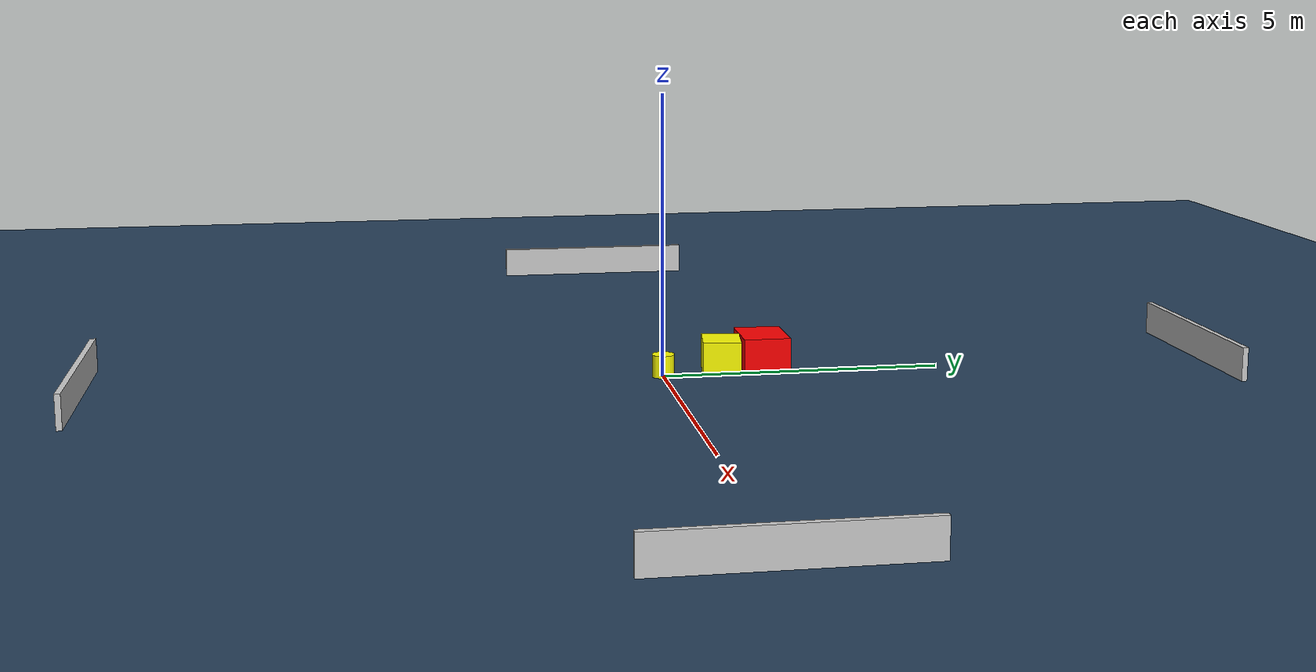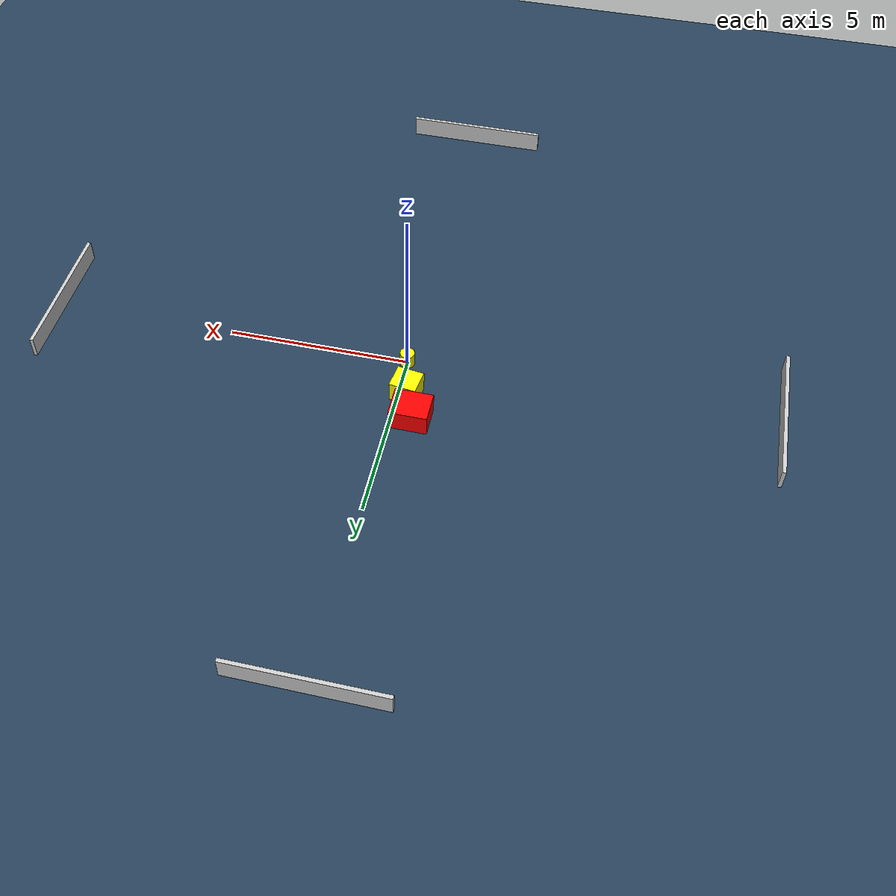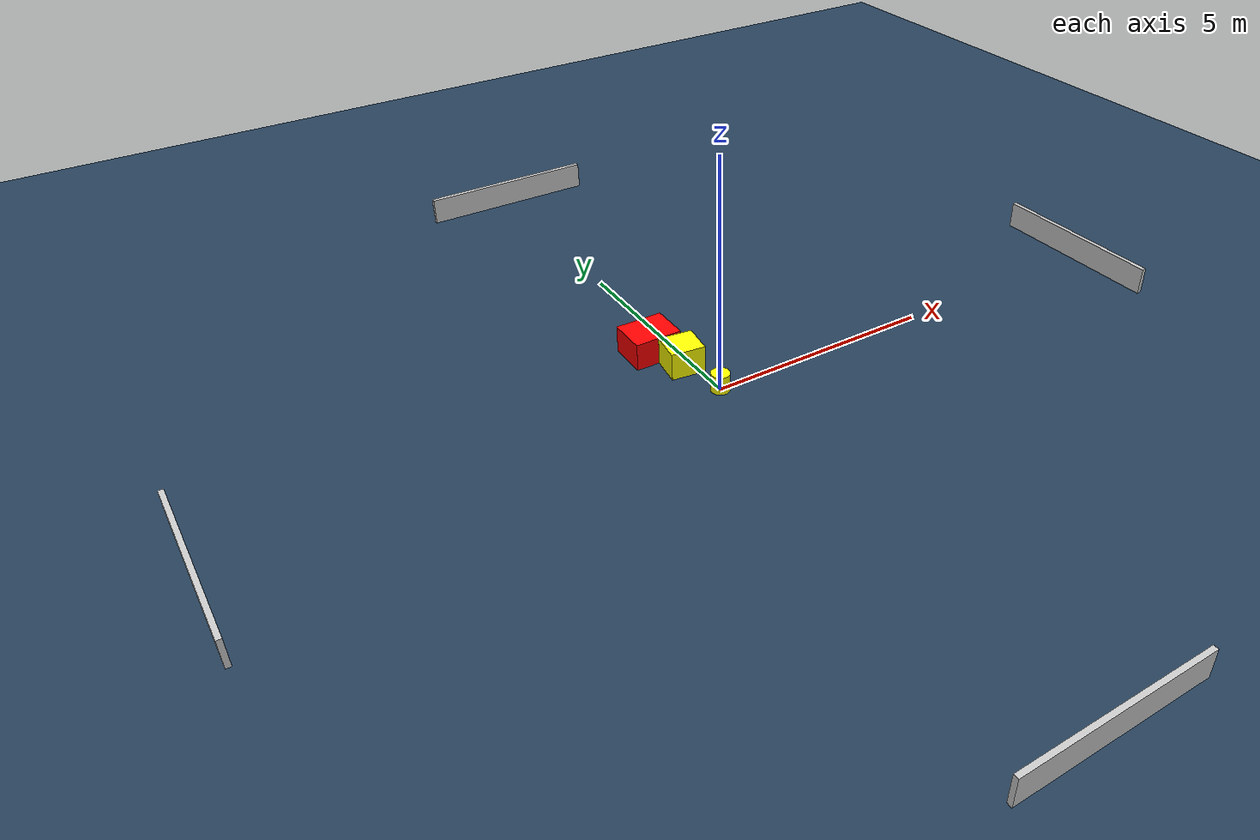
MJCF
<?xml version="1.0" ?>
<mujoco model="generated_environment">
  <option timestep="0.01" integrator="RK4" cone="elliptic"/>
  <default>
    <geom density="1"/>
  </default>
  <asset>
    <texture builtin="gradient" height="3072" name="skybox" rgb1="0.3 0.5 0.7" rgb2="0 0 0" type="skybox" width="512"/>
    <texture builtin="checker" height="300" name="groundplane" rgb1="0.2 0.3 0.4" rgb2="0.1 0.2 0.3" type="2d" width="300"/>
    <material name="groundplane" reflectance="0.2" texrepeat="5 5" texture="groundplane"/>
  </asset>
  <worldbody>
    <light dir="0 0 -1" directional="true" pos="0 0 1.5"/>
    <geom condim="3" friction="0.5 0.005 0.001" material="groundplane" name="floor" pos="0 0 0" size="0 0 0.05" type="plane"/>
    <body name="walls">
      <geom name="wall_1" condim="4" pos="-10.0 0.0 0.3" rgba="0.800000011920929 0.800000011920929 0.800000011920929 1.0" size="0.05 2.0 0.3" type="box"/>
      <geom name="wall_2" condim="4" pos="10.0 0.0 0.3" rgba="0.800000011920929 0.800000011920929 0.800000011920929 1.0" size="0.05 2.0 0.3" type="box"/>
      <geom name="wall_3" condim="4" pos="0.0 -10.0 0.3" rgba="0.800000011920929 0.800000011920929 0.800000011920929 1.0" size="2.0 0.05 0.3" type="box"/>
      <geom name="wall_4" condim="4" pos="0.0 10.0 0.3" rgba="0.800000011920929 0.800000011920929 0.800000011920929 1.0" size="2.0 0.05 0.3" type="box"/>
    </body>
    <body name="robot">
      <joint name="joint_x" type="slide" pos="0 0 0" axis="1 0 0"/>
      <joint name="joint_y" type="slide" pos="0 0 0" axis="0 1 0"/>
      <geom name="robot" type="cylinder" pos="0.0 0.0 0.2" size="0.2 0.2 0.0" mass="5.0" friction="1.0 0.005 0.0001" condim="4" rgba="1.0 1.0 0.0 1.0"/>
    </body>
    <body name="obstacle_1_movable">
      <geom name="obstacle_1_movable" condim="4" pos="-0.22656895396998208 1.087581368640488 0.3" euler="0 0 352.0806990680064" friction="0.0 0.005 0.001" rgba="1.0 1.0 0.0 1.0" size="0.3659559559358573 0.3414027072080069 0.3" type="box" mass="0.1"/>
      <joint type="free"/>
    </body>
    <body name="obstacle_2_static">
      <geom name="obstacle_2_static" condim="4" pos="-0.5259746691613502 1.9004353544075832 0.3" euler="0 0 269.56536603960507" friction="0.0 0.005 0.001" rgba="1.0 0.0 0.0 1.0" size="0.4231538985497978 0.5166416344849558 0.3" type="box"/>
    </body>
  </worldbody>
  <actuator>
    <motor name="actuator_x" joint="joint_x" gear="1" ctrlrange="-1 1"/>
    <motor name="actuator_y" joint="joint_y" gear="1" ctrlrange="-1 1"/>
  </actuator>
</mujoco>
